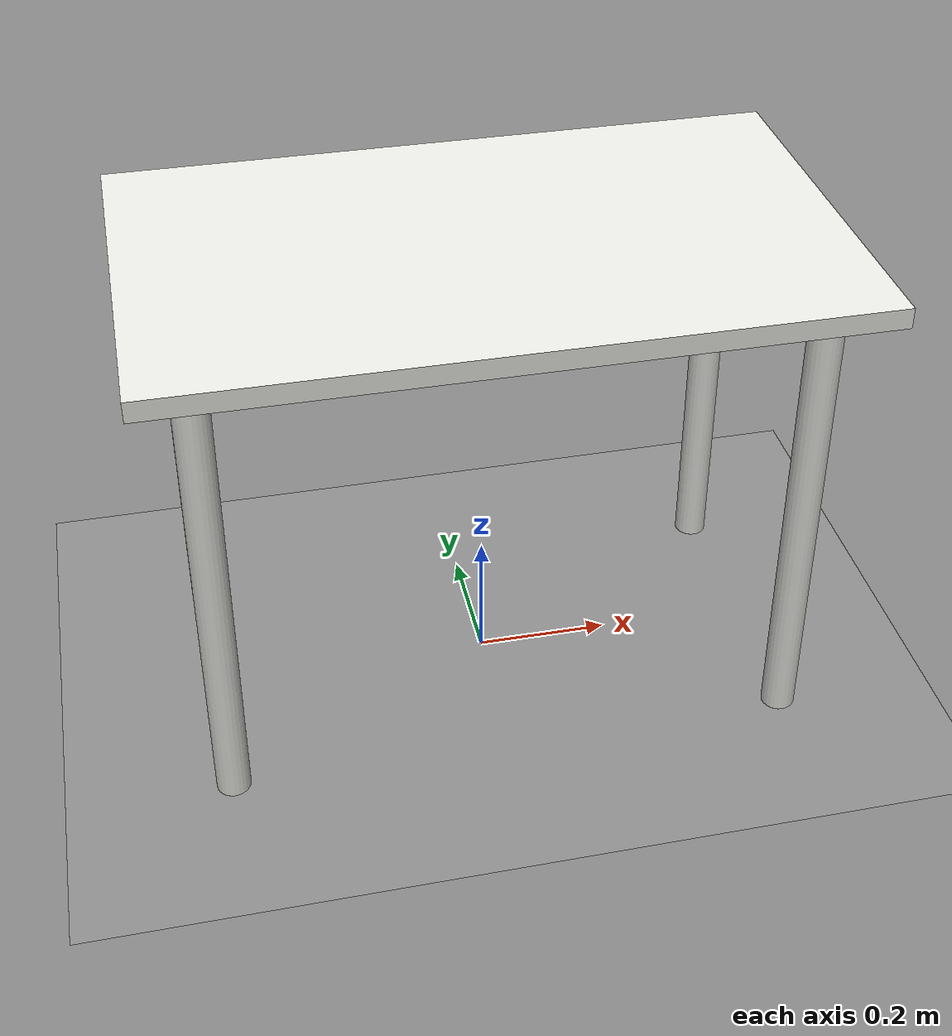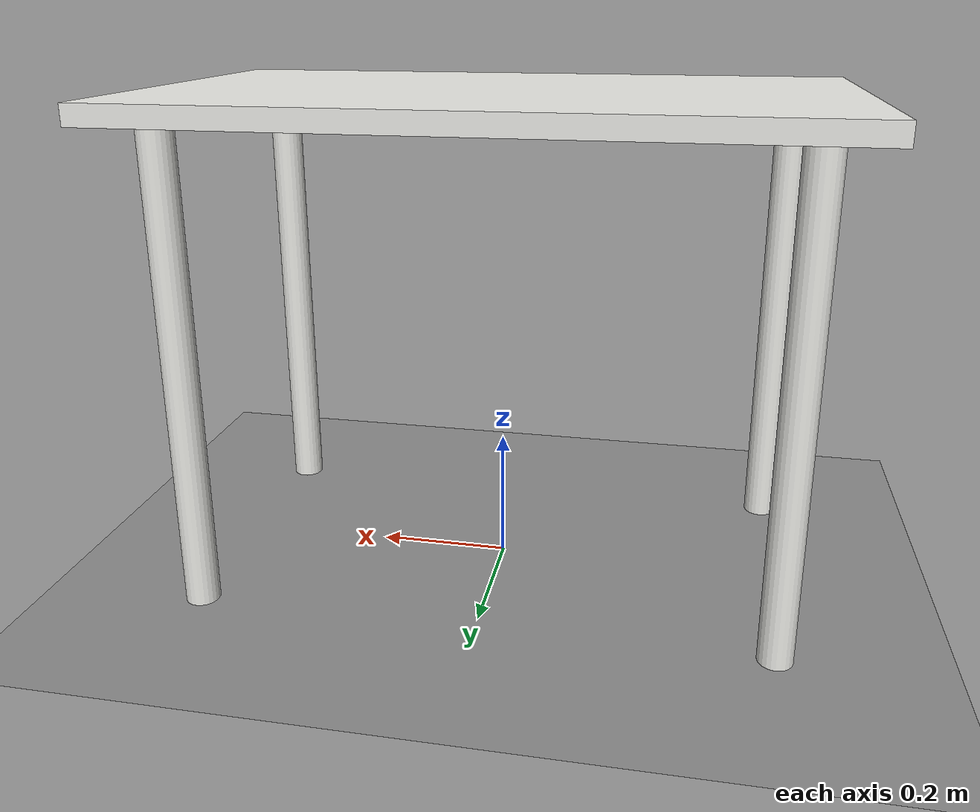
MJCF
<mujoco model="linnmon_adils_table_scene">

  <compiler angle="radian" autolimits="true"/>

  <option gravity="0 0 -9.81" timestep="0.002"/>

  <visual>
    <headlight diffuse="0.3 0.3 0.3" ambient="0.4 0.4 0.4" specular="0.1 0.1 0.1"/>
    <quality shadowsize="4096"/>
  </visual>

  <asset>
    <material name="table_white_mat" rgba="0.92 0.92 0.90 1" specular="0.15" shininess="0.2" reflectance="0.05"/>
    <material name="floor_mat" rgba="0.55 0.55 0.55 1" specular="0.05" shininess="0.0"/>
  </asset>

  <default>
    <default class="table_collision">
      <geom contype="1" conaffinity="1" condim="3" friction="0.6 0.01 0.001" solref="0.005 1" solimp="0.95 0.99 0.001"/>
    </default>
  </default>

  <worldbody>
    <light name="top_light" pos="0 0 2.5" dir="0 0 -1" diffuse="0.6 0.6 0.6" specular="0.1 0.1 0.1" castshadow="true"/>

    <camera name="table_view" pos="1.6 -1.6 1.3" xyaxes="0.707 0.707 0 -0.4 0.4 0.82"/>

    <!-- Floor: static plane at Z = 0 -->
    <geom name="floor" type="plane" size="2.5 2.5 0.05" pos="0 0 0" material="floor_mat" class="table_collision"/>

    <!-- IKEA LINNMON / ADILS table, static.
         Tabletop top surface at Z = 0.74 m (0.725 center + 0.015 half-thickness). -->
    <body name="table" pos="0 0 0">

      <geom name="tabletop" type="box" size="0.50 0.30 0.015" pos="0 0 0.725"
            material="table_white_mat" class="table_collision"/>

      <!-- Four ADILS-style cylindrical legs, inset from tabletop edges,
           running from the floor (Z=0) up to just under the tabletop
           (Z=0.71), radius 0.025 m. -->
      <geom name="table_leg_front_left" type="cylinder" size="0.025 0.355" pos="0.42 0.22 0.355"
            material="table_white_mat" class="table_collision"/>
      <geom name="table_leg_front_right" type="cylinder" size="0.025 0.355" pos="0.42 -0.22 0.355"
            material="table_white_mat" class="table_collision"/>
      <geom name="table_leg_back_left" type="cylinder" size="0.025 0.355" pos="-0.42 0.22 0.355"
            material="table_white_mat" class="table_collision"/>
      <geom name="table_leg_back_right" type="cylinder" size="0.025 0.355" pos="-0.42 -0.22 0.355"
            material="table_white_mat" class="table_collision"/>

    </body>
  </worldbody>
</mujoco>
